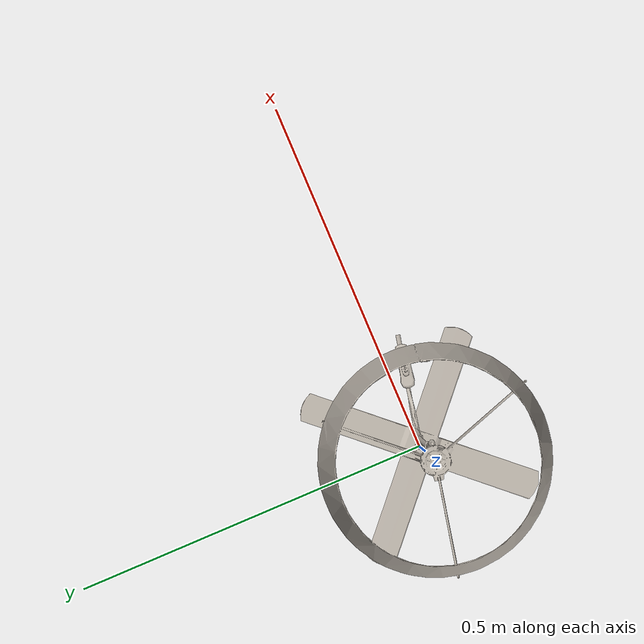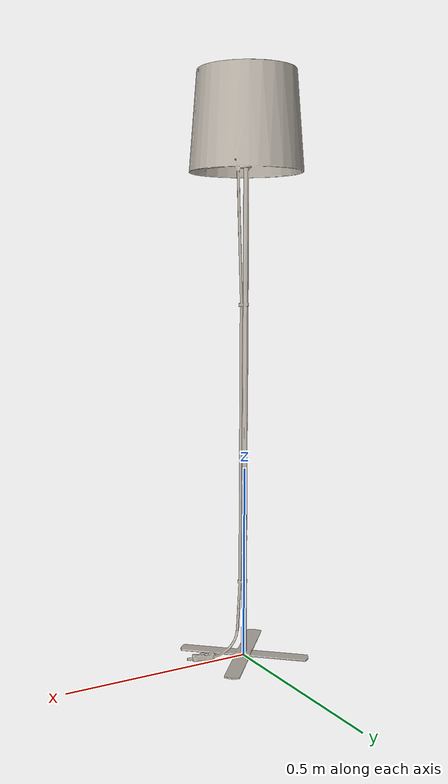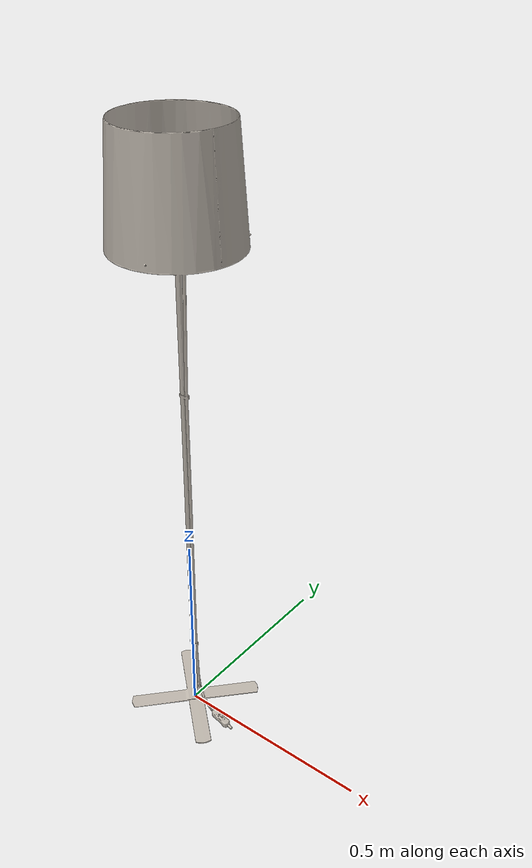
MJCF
<mujoco model="lamp">
  <default>
    <default class="visual">
      <geom group="2" type="mesh" contype="0" conaffinity="0"/>
    </default>
    <default class="collision">
      <geom group="3" type="mesh"/>
    </default>
  </default>
  <asset>
    <texture type="2d" name="Basecolor_0" file="Basecolor_0.png"/>
    <material name="SimplygonCastMaterial.003" texture="Basecolor_0" specular="0.5" shininess="0.5"/>
    <mesh file="lamp.obj"/>
  </asset>
  <worldbody>
    <body name="lamp">
      <geom material="SimplygonCastMaterial.003" mesh="lamp" class="visual"/>
      <geom mesh="lamp" class="collision"/>
    </body>
  </worldbody>
</mujoco>
